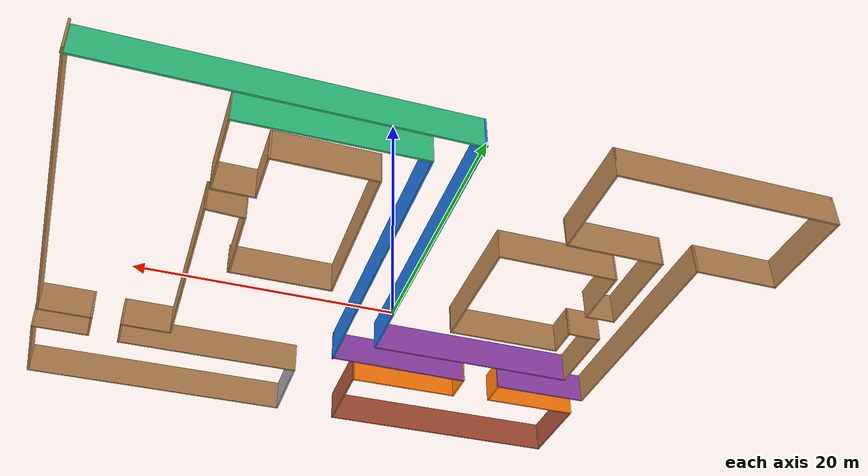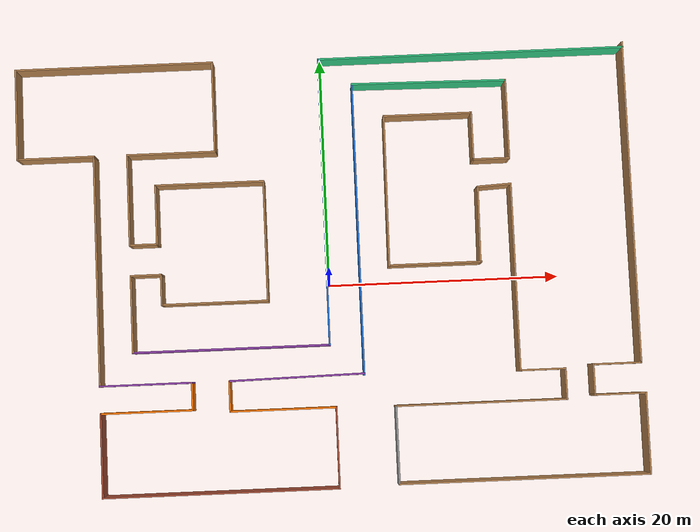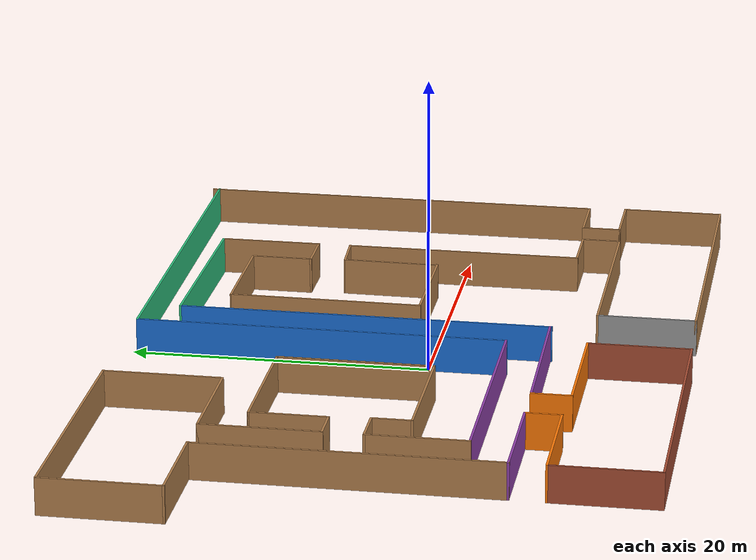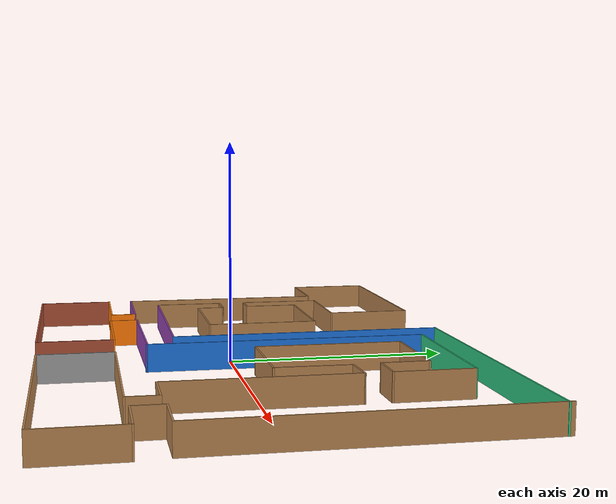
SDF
<?xml version='1.0'?>
<sdf version='1.7'>
  <model name='goofy_office'>
    <pose>0.081943 1.33085 0 0 -0 0</pose>
    <link name='Wall_100'>
      <collision name='Wall_100_Collision'>
        <geometry>
          <box>
            <size>21.5 0.15 2.5</size>
          </box>
        </geometry>
        <pose>0 0 1.25 0 -0 0</pose>
      </collision>
      <visual name='Wall_100_Visual'>
        <pose>0 0 1.25 0 -0 0</pose>
        <geometry>
          <box>
            <size>21.5 0.15 2.5</size>
          </box>
        </geometry>
        <material>
          <script>
            <uri>file://media/materials/scripts/gazebo.material</uri>
            <name>Gazebo/Wood</name>
          </script>
          <ambient>1 1 1 1</ambient>
        </material>
        <meta>
          <layer>0</layer>
        </meta>
      </visual>
      <pose>15.9 -18.5796 0 0 -0 0</pose>
    </link>
    <link name='Wall_101'>
      <collision name='Wall_101_Collision'>
        <geometry>
          <box>
            <size>7 0.15 2.5</size>
          </box>
        </geometry>
        <pose>0 0 1.25 0 -0 0</pose>
      </collision>
      <visual name='Wall_101_Visual'>
        <pose>0 0 1.25 0 -0 0</pose>
        <geometry>
          <box>
            <size>7 0.15 2.5</size>
          </box>
        </geometry>
        <material>
          <script>
            <uri>file://media/materials/scripts/gazebo.material</uri>
            <name>Gazebo/Wood</name>
          </script>
          <ambient>1 1 1 1</ambient>
        </material>
        <meta>
          <layer>0</layer>
        </meta>
      </visual>
      <pose>26.575 -15.1546 0 0 -0 1.5708</pose>
    </link>
    <link name='Wall_102'>
      <collision name='Wall_102_Collision'>
        <geometry>
          <box>
            <size>4.5 0.15 2.5</size>
          </box>
        </geometry>
        <pose>0 0 1.25 0 -0 0</pose>
      </collision>
      <visual name='Wall_102_Visual'>
        <pose>0 0 1.25 0 -0 0</pose>
        <geometry>
          <box>
            <size>4.5 0.15 2.5</size>
          </box>
        </geometry>
        <material>
          <script>
            <uri>file://media/materials/scripts/gazebo.material</uri>
            <name>Gazebo/Wood</name>
          </script>
          <ambient>1 1 1 1</ambient>
        </material>
        <meta>
          <layer>0</layer>
        </meta>
      </visual>
      <pose>24.4 -11.7296 0 0 -0 3.14159</pose>
    </link>
    <link name='Wall_103'>
      <collision name='Wall_103_Collision'>
        <geometry>
          <box>
            <size>2.75 0.15 2.5</size>
          </box>
        </geometry>
        <pose>0 0 1.25 0 -0 0</pose>
      </collision>
      <visual name='Wall_103_Visual'>
        <pose>0 0 1.25 0 -0 0</pose>
        <geometry>
          <box>
            <size>2.75 0.15 2.5</size>
          </box>
        </geometry>
        <material>
          <script>
            <uri>file://media/materials/scripts/gazebo.material</uri>
            <name>Gazebo/Wood</name>
          </script>
          <ambient>1 1 1 1</ambient>
        </material>
        <meta>
          <layer>0</layer>
        </meta>
      </visual>
      <pose>22.225 -10.4296 0 0 -0 1.5708</pose>
    </link>
    <link name='Wall_104'>
      <collision name='Wall_104_Collision'>
        <geometry>
          <box>
            <size>4.25 0.15 2.5</size>
          </box>
        </geometry>
        <pose>0 0 1.25 0 -0 0</pose>
      </collision>
      <visual name='Wall_104_Visual'>
        <pose>0 0 1.25 0 -0 0</pose>
        <geometry>
          <box>
            <size>4.25 0.15 2.5</size>
          </box>
        </geometry>
        <material>
          <script>
            <uri>file://media/materials/scripts/gazebo.material</uri>
            <name>Gazebo/Wood</name>
          </script>
          <ambient>1 1 1 1</ambient>
        </material>
        <meta>
          <layer>0</layer>
        </meta>
      </visual>
      <pose>24.275 -9.12964 0 0 -0 0</pose>
    </link>
    <link name='Wall_105'>
      <collision name='Wall_105_Collision'>
        <geometry>
          <box>
            <size>28 0.15 2.5</size>
          </box>
        </geometry>
        <pose>0 0 1.25 0 -0 0</pose>
      </collision>
      <visual name='Wall_105_Visual'>
        <pose>0 0 1.25 0 -0 0</pose>
        <geometry>
          <box>
            <size>28 0.15 2.5</size>
          </box>
        </geometry>
        <material>
          <script>
            <uri>file://media/materials/scripts/gazebo.material</uri>
            <name>Gazebo/Wood</name>
          </script>
          <ambient>1 1 1 1</ambient>
        </material>
        <meta>
          <layer>0</layer>
        </meta>
      </visual>
      <pose>26.325 4.79536 0 0 -0 1.5708</pose>
    </link>
    <link name='Wall_107'>
      <collision name='Wall_107_Collision'>
        <geometry>
          <box>
            <size>2.5 0.15 2.5</size>
          </box>
        </geometry>
        <pose>0 0 1.25 0 -0 0</pose>
      </collision>
      <visual name='Wall_107_Visual'>
        <pose>0 0 1.25 0 -0 0</pose>
        <geometry>
          <box>
            <size>2.5 0.15 2.5</size>
          </box>
        </geometry>
        <material>
          <script>
            <uri>file://media/materials/scripts/gazebo.material</uri>
            <name>Gazebo/Grey</name>
          </script>
          <ambient>0.996078 0.47451 0.0196078 1</ambient>
        </material>
        <meta>
          <layer>0</layer>
        </meta>
      </visual>
      <pose>-12.125 -10.4454 0 0 -0 1.5708</pose>
    </link>
    <link name='Wall_108'>
      <collision name='Wall_108_Collision'>
        <geometry>
          <box>
            <size>8 0.15 2.5</size>
          </box>
        </geometry>
        <pose>0 0 1.25 0 -0 0</pose>
      </collision>
      <visual name='Wall_108_Visual'>
        <pose>0 0 1.25 0 -0 0</pose>
        <geometry>
          <box>
            <size>8 0.15 2.5</size>
          </box>
        </geometry>
        <material>
          <script>
            <uri>file://media/materials/scripts/gazebo.material</uri>
            <name>Gazebo/Grey</name>
          </script>
          <ambient>0.568627 0.254902 0.67451 1</ambient>
        </material>
        <meta>
          <layer>0</layer>
        </meta>
      </visual>
      <pose>-16.05 -9.27036 0 0 -0 3.14159</pose>
    </link>
    <link name='Wall_109'>
      <collision name='Wall_109_Collision'>
        <geometry>
          <box>
            <size>20 0.15 2.5</size>
          </box>
        </geometry>
        <pose>0 0 1.25 0 -0 0</pose>
      </collision>
      <visual name='Wall_109_Visual'>
        <pose>0 0 1.25 0 -0 0</pose>
        <geometry>
          <box>
            <size>20 0.15 2.5</size>
          </box>
        </geometry>
        <material>
          <script>
            <uri>file://media/materials/scripts/gazebo.material</uri>
            <name>Gazebo/Wood</name>
          </script>
          <ambient>1 1 1 1</ambient>
        </material>
        <meta>
          <layer>0</layer>
        </meta>
      </visual>
      <pose>-19.975 0.654642 0 0 -0 1.5708</pose>
    </link>
    <link name='Wall_110'>
      <collision name='Wall_110_Collision'>
        <geometry>
          <box>
            <size>6.75 0.15 2.5</size>
          </box>
        </geometry>
        <pose>0 0 1.25 0 -0 0</pose>
      </collision>
      <visual name='Wall_110_Visual'>
        <pose>0 0 1.25 0 -0 0</pose>
        <geometry>
          <box>
            <size>6.75 0.15 2.5</size>
          </box>
        </geometry>
        <material>
          <script>
            <uri>file://media/materials/scripts/gazebo.material</uri>
            <name>Gazebo/Wood</name>
          </script>
          <ambient>1 1 1 1</ambient>
        </material>
        <meta>
          <layer>0</layer>
        </meta>
      </visual>
      <pose>-23.275 10.5796 0 0 -0 3.14159</pose>
    </link>
    <link name='Wall_111'>
      <collision name='Wall_111_Collision'>
        <geometry>
          <box>
            <size>8 0.15 2.5</size>
          </box>
        </geometry>
        <pose>0 0 1.25 0 -0 0</pose>
      </collision>
      <visual name='Wall_111_Visual'>
        <pose>0 0 1.25 0 -0 0</pose>
        <geometry>
          <box>
            <size>8 0.15 2.5</size>
          </box>
        </geometry>
        <material>
          <script>
            <uri>file://media/materials/scripts/gazebo.material</uri>
            <name>Gazebo/Wood</name>
          </script>
          <ambient>1 1 1 1</ambient>
        </material>
        <meta>
          <layer>0</layer>
        </meta>
      </visual>
      <pose>-26.575 14.5046 0 0 -0 1.5708</pose>
    </link>
    <link name='Wall_112'>
      <collision name='Wall_112_Collision'>
        <geometry>
          <box>
            <size>17.25 0.15 2.5</size>
          </box>
        </geometry>
        <pose>0 0 1.25 0 -0 0</pose>
      </collision>
      <visual name='Wall_112_Visual'>
        <pose>0 0 1.25 0 -0 0</pose>
        <geometry>
          <box>
            <size>17.25 0.15 2.5</size>
          </box>
        </geometry>
        <material>
          <script>
            <uri>file://media/materials/scripts/gazebo.material</uri>
            <name>Gazebo/Wood</name>
          </script>
          <ambient>1 1 1 1</ambient>
        </material>
        <meta>
          <layer>0</layer>
        </meta>
      </visual>
      <pose>-18.025 18.4296 0 0 -0 0</pose>
    </link>
    <link name='Wall_113'>
      <collision name='Wall_113_Collision'>
        <geometry>
          <box>
            <size>8 0.15 2.5</size>
          </box>
        </geometry>
        <pose>0 0 1.25 0 -0 0</pose>
      </collision>
      <visual name='Wall_113_Visual'>
        <pose>0 0 1.25 0 -0 0</pose>
        <geometry>
          <box>
            <size>8 0.15 2.5</size>
          </box>
        </geometry>
        <material>
          <script>
            <uri>file://media/materials/scripts/gazebo.material</uri>
            <name>Gazebo/Wood</name>
          </script>
          <ambient>1 1 1 1</ambient>
        </material>
        <meta>
          <layer>0</layer>
        </meta>
      </visual>
      <pose>-9.475 14.5046 0 0 -0 -1.5708</pose>
    </link>
    <link name='Wall_114'>
      <collision name='Wall_114_Collision'>
        <geometry>
          <box>
            <size>7.75 0.15 2.5</size>
          </box>
        </geometry>
        <pose>0 0 1.25 0 -0 0</pose>
      </collision>
      <visual name='Wall_114_Visual'>
        <pose>0 0 1.25 0 -0 0</pose>
        <geometry>
          <box>
            <size>7.75 0.15 2.5</size>
          </box>
        </geometry>
        <material>
          <script>
            <uri>file://media/materials/scripts/gazebo.material</uri>
            <name>Gazebo/Wood</name>
          </script>
          <ambient>1 1 1 1</ambient>
        </material>
        <meta>
          <layer>0</layer>
        </meta>
      </visual>
      <pose>-13.275 10.5796 0 0 -0 3.14159</pose>
    </link>
    <link name='Wall_115'>
      <collision name='Wall_115_Collision'>
        <geometry>
          <box>
            <size>8 0.15 2.5</size>
          </box>
        </geometry>
        <pose>0 0 1.25 0 -0 0</pose>
      </collision>
      <visual name='Wall_115_Visual'>
        <pose>0 0 1.25 0 -0 0</pose>
        <geometry>
          <box>
            <size>8 0.15 2.5</size>
          </box>
        </geometry>
        <material>
          <script>
            <uri>file://media/materials/scripts/gazebo.material</uri>
            <name>Gazebo/Wood</name>
          </script>
          <ambient>1 1 1 1</ambient>
        </material>
        <meta>
          <layer>0</layer>
        </meta>
      </visual>
      <pose>-17.075 6.65464 0 0 -0 -1.5708</pose>
    </link>
    <link name='Wall_116'>
      <collision name='Wall_116_Collision'>
        <geometry>
          <box>
            <size>2.5 0.15 2.5</size>
          </box>
        </geometry>
        <pose>0 0 1.25 0 -0 0</pose>
      </collision>
      <visual name='Wall_116_Visual'>
        <pose>0 0 1.25 0 -0 0</pose>
        <geometry>
          <box>
            <size>2.5 0.15 2.5</size>
          </box>
        </geometry>
        <material>
          <script>
            <uri>file://media/materials/scripts/gazebo.material</uri>
            <name>Gazebo/Wood</name>
          </script>
          <ambient>1 1 1 1</ambient>
        </material>
        <meta>
          <layer>0</layer>
        </meta>
      </visual>
      <pose>-15.9 2.72964 0 0 -0 0</pose>
    </link>
    <link name='Wall_117'>
      <collision name='Wall_117_Collision'>
        <geometry>
          <box>
            <size>5.25 0.15 2.5</size>
          </box>
        </geometry>
        <pose>0 0 1.25 0 -0 0</pose>
      </collision>
      <visual name='Wall_117_Visual'>
        <pose>0 0 1.25 0 -0 0</pose>
        <geometry>
          <box>
            <size>5.25 0.15 2.5</size>
          </box>
        </geometry>
        <material>
          <script>
            <uri>file://media/materials/scripts/gazebo.material</uri>
            <name>Gazebo/Wood</name>
          </script>
          <ambient>1 1 1 1</ambient>
        </material>
        <meta>
          <layer>0</layer>
        </meta>
      </visual>
      <pose>-14.725 5.27964 0 0 -0 1.5708</pose>
    </link>
    <link name='Wall_118'>
      <collision name='Wall_118_Collision'>
        <geometry>
          <box>
            <size>9.5 0.15 2.5</size>
          </box>
        </geometry>
        <pose>0 0 1.25 0 -0 0</pose>
      </collision>
      <visual name='Wall_118_Visual'>
        <pose>0 0 1.25 0 -0 0</pose>
        <geometry>
          <box>
            <size>9.5 0.15 2.5</size>
          </box>
        </geometry>
        <material>
          <script>
            <uri>file://media/materials/scripts/gazebo.material</uri>
            <name>Gazebo/Wood</name>
          </script>
          <ambient>1 1 1 1</ambient>
        </material>
        <meta>
          <layer>0</layer>
        </meta>
      </visual>
      <pose>-10.05 7.82964 0 0 -0 0</pose>
    </link>
    <link name='Wall_119'>
      <collision name='Wall_119_Collision'>
        <geometry>
          <box>
            <size>10.5 0.15 2.5</size>
          </box>
        </geometry>
        <pose>0 0 1.25 0 -0 0</pose>
      </collision>
      <visual name='Wall_119_Visual'>
        <pose>0 0 1.25 0 -0 0</pose>
        <geometry>
          <box>
            <size>10.5 0.15 2.5</size>
          </box>
        </geometry>
        <material>
          <script>
            <uri>file://media/materials/scripts/gazebo.material</uri>
            <name>Gazebo/Wood</name>
          </script>
          <ambient>1 1 1 1</ambient>
        </material>
        <meta>
          <layer>0</layer>
        </meta>
      </visual>
      <pose>-5.375 2.65464 0 0 -0 -1.5708</pose>
    </link>
    <link name='Wall_120'>
      <collision name='Wall_120_Collision'>
        <geometry>
          <box>
            <size>9.25 0.15 2.5</size>
          </box>
        </geometry>
        <pose>0 0 1.25 0 -0 0</pose>
      </collision>
      <visual name='Wall_120_Visual'>
        <pose>0 0 1.25 0 -0 0</pose>
        <geometry>
          <box>
            <size>9.25 0.15 2.5</size>
          </box>
        </geometry>
        <material>
          <script>
            <uri>file://media/materials/scripts/gazebo.material</uri>
            <name>Gazebo/Wood</name>
          </script>
          <ambient>1 1 1 1</ambient>
        </material>
        <meta>
          <layer>0</layer>
        </meta>
      </visual>
      <pose>-9.925 -2.52036 0 0 -0 3.14159</pose>
    </link>
    <link name='Wall_121'>
      <collision name='Wall_121_Collision'>
        <geometry>
          <box>
            <size>2.75 0.15 2.5</size>
          </box>
        </geometry>
        <pose>0 0 1.25 0 -0 0</pose>
      </collision>
      <visual name='Wall_121_Visual'>
        <pose>0 0 1.25 0 -0 0</pose>
        <geometry>
          <box>
            <size>2.75 0.15 2.5</size>
          </box>
        </geometry>
        <material>
          <script>
            <uri>file://media/materials/scripts/gazebo.material</uri>
            <name>Gazebo/Wood</name>
          </script>
          <ambient>1 1 1 1</ambient>
        </material>
        <meta>
          <layer>0</layer>
        </meta>
      </visual>
      <pose>-14.475 -1.22036 0 0 -0 1.5708</pose>
    </link>
    <link name='Wall_122'>
      <collision name='Wall_122_Collision'>
        <geometry>
          <box>
            <size>2.75 0.15 2.5</size>
          </box>
        </geometry>
        <pose>0 0 1.25 0 -0 0</pose>
      </collision>
      <visual name='Wall_122_Visual'>
        <pose>0 0 1.25 0 -0 0</pose>
        <geometry>
          <box>
            <size>2.75 0.15 2.5</size>
          </box>
        </geometry>
        <material>
          <script>
            <uri>file://media/materials/scripts/gazebo.material</uri>
            <name>Gazebo/Wood</name>
          </script>
          <ambient>1 1 1 1</ambient>
        </material>
        <meta>
          <layer>0</layer>
        </meta>
      </visual>
      <pose>-15.775 0.079642 0 0 -0 3.14159</pose>
    </link>
    <link name='Wall_123'>
      <collision name='Wall_123_Collision'>
        <geometry>
          <box>
            <size>6.75 0.15 2.5</size>
          </box>
        </geometry>
        <pose>0 0 1.25 0 -0 0</pose>
      </collision>
      <visual name='Wall_123_Visual'>
        <pose>0 0 1.25 0 -0 0</pose>
        <geometry>
          <box>
            <size>6.75 0.15 2.5</size>
          </box>
        </geometry>
        <material>
          <script>
            <uri>file://media/materials/scripts/gazebo.material</uri>
            <name>Gazebo/Wood</name>
          </script>
          <ambient>1 1 1 1</ambient>
        </material>
        <meta>
          <layer>0</layer>
        </meta>
      </visual>
      <pose>-17.075 -3.22036 0 0 -0 -1.5708</pose>
    </link>
    <link name='Wall_124'>
      <collision name='Wall_124_Collision'>
        <geometry>
          <box>
            <size>17 0.15 2.5</size>
          </box>
        </geometry>
        <pose>0 0 1.25 0 -0 0</pose>
      </collision>
      <visual name='Wall_124_Visual'>
        <pose>0 0 1.25 0 -0 0</pose>
        <geometry>
          <box>
            <size>17 0.15 2.5</size>
          </box>
        </geometry>
        <material>
          <script>
            <uri>file://media/materials/scripts/gazebo.material</uri>
            <name>Gazebo/Grey</name>
          </script>
          <ambient>0.568627 0.254902 0.67451 1</ambient>
        </material>
        <meta>
          <layer>0</layer>
        </meta>
      </visual>
      <pose>-8.65 -6.52036 0 0 -0 0</pose>
    </link>
    <link name='Wall_126'>
      <collision name='Wall_126_Collision'>
        <geometry>
          <box>
            <size>25 0.15 2.5</size>
          </box>
        </geometry>
        <pose>0 0 1.25 0 -0 0</pose>
      </collision>
      <visual name='Wall_126_Visual'>
        <pose>0 0 1.25 0 -0 0</pose>
        <geometry>
          <box>
            <size>25 0.15 2.5</size>
          </box>
        </geometry>
        <material>
          <script>
            <uri>file://media/materials/scripts/gazebo.material</uri>
            <name>Gazebo/Grey</name>
          </script>
          <ambient>0.109804 0.443137 0.847059 1</ambient>
        </material>
        <meta>
          <layer>0</layer>
        </meta>
      </visual>
      <pose>-0.225 5.90464 0 0 -0 1.5708</pose>
    </link>
    <link name='Wall_132'>
      <collision name='Wall_132_Collision'>
        <geometry>
          <box>
            <size>26.75 0.15 2.5</size>
          </box>
        </geometry>
        <pose>0 0 1.25 0 -0 0</pose>
      </collision>
      <visual name='Wall_132_Visual'>
        <pose>0 0 1.25 0 -0 0</pose>
        <geometry>
          <box>
            <size>26.75 0.15 2.5</size>
          </box>
        </geometry>
        <material>
          <script>
            <uri>file://media/materials/scripts/gazebo.material</uri>
            <name>Gazebo/Grey</name>
          </script>
          <ambient>0.180392 0.760784 0.494118 1</ambient>
        </material>
        <meta>
          <layer>0</layer>
        </meta>
      </visual>
      <pose>13.075 18.3296 0 0 -0 0</pose>
    </link>
    <link name='Wall_75'>
      <collision name='Wall_75_Collision'>
        <geometry>
          <box>
            <size>8 0.15 2.5</size>
          </box>
        </geometry>
        <pose>0 0 1.25 0 -0 0</pose>
      </collision>
      <visual name='Wall_75_Visual'>
        <pose>0 0 1.25 0 -0 0</pose>
        <geometry>
          <box>
            <size>8 0.15 2.5</size>
          </box>
        </geometry>
        <material>
          <script>
            <uri>file://media/materials/scripts/gazebo.material</uri>
            <name>Gazebo/Grey</name>
          </script>
          <ambient>0.996078 0.47451 0.0196078 1</ambient>
        </material>
        <meta>
          <layer>0</layer>
        </meta>
      </visual>
      <pose>-16.05 -11.6204 0 0 -0 0</pose>
    </link>
    <link name='Wall_77'>
      <collision name='Wall_77_Collision'>
        <geometry>
          <box>
            <size>7.25 0.15 2.5</size>
          </box>
        </geometry>
        <pose>0 0 1.25 0 -0 0</pose>
      </collision>
      <visual name='Wall_77_Visual'>
        <pose>0 0 1.25 0 -0 0</pose>
        <geometry>
          <box>
            <size>7.25 0.15 2.5</size>
          </box>
        </geometry>
        <material>
          <script>
            <uri>file://media/materials/scripts/gazebo.material</uri>
            <name>Gazebo/Bricks</name>
          </script>
          <ambient>1 1 1 1</ambient>
        </material>
        <meta>
          <layer>0</layer>
        </meta>
      </visual>
      <pose>-19.975 -15.1704 0 0 -0 -1.5708</pose>
    </link>
    <link name='Wall_78'>
      <collision name='Wall_78_Collision'>
        <geometry>
          <box>
            <size>20.25 0.15 2.5</size>
          </box>
        </geometry>
        <pose>0 0 1.25 0 -0 0</pose>
      </collision>
      <visual name='Wall_78_Visual'>
        <pose>0 0 1.25 0 -0 0</pose>
        <geometry>
          <box>
            <size>20.25 0.15 2.5</size>
          </box>
        </geometry>
        <material>
          <script>
            <uri>file://media/materials/scripts/gazebo.material</uri>
            <name>Gazebo/Bricks</name>
          </script>
          <ambient>1 1 1 1</ambient>
        </material>
        <meta>
          <layer>0</layer>
        </meta>
      </visual>
      <pose>-9.925 -18.7204 0 0 -0 0</pose>
    </link>
    <link name='Wall_79'>
      <collision name='Wall_79_Collision'>
        <geometry>
          <box>
            <size>7 0.15 2.5</size>
          </box>
        </geometry>
        <pose>0 0 1.25 0 -0 0</pose>
      </collision>
      <visual name='Wall_79_Visual'>
        <pose>0 0 1.25 0 -0 0</pose>
        <geometry>
          <box>
            <size>7 0.15 2.5</size>
          </box>
        </geometry>
        <material>
          <script>
            <uri>file://media/materials/scripts/gazebo.material</uri>
            <name>Gazebo/Bricks</name>
          </script>
          <ambient>1 1 1 1</ambient>
        </material>
        <meta>
          <layer>0</layer>
        </meta>
      </visual>
      <pose>0.125 -15.2954 0 0 -0 1.5708</pose>
    </link>
    <link name='Wall_80'>
      <collision name='Wall_80_Collision'>
        <geometry>
          <box>
            <size>9.158 0.15 2.5</size>
          </box>
        </geometry>
        <pose>0 0 1.25 0 -0 0</pose>
      </collision>
      <visual name='Wall_80_Visual'>
        <pose>0 0 1.25 0 -0 0</pose>
        <geometry>
          <box>
            <size>9.158 0.15 2.5</size>
          </box>
        </geometry>
        <material>
          <script>
            <uri>file://media/materials/scripts/gazebo.material</uri>
            <name>Gazebo/Grey</name>
          </script>
          <ambient>0.996078 0.47451 0.0196078 1</ambient>
        </material>
        <meta>
          <layer>0</layer>
        </meta>
      </visual>
      <pose>-4.379 -11.8704 0 0 -0 3.14159</pose>
    </link>
    <link name='Wall_81'>
      <collision name='Wall_81_Collision'>
        <geometry>
          <box>
            <size>2.75 0.15 2.5</size>
          </box>
        </geometry>
        <pose>0 0 1.25 0 -0 0</pose>
      </collision>
      <visual name='Wall_81_Visual'>
        <pose>0 0 1.25 0 -0 0</pose>
        <geometry>
          <box>
            <size>2.75 0.15 2.5</size>
          </box>
        </geometry>
        <material>
          <script>
            <uri>file://media/materials/scripts/gazebo.material</uri>
            <name>Gazebo/Grey</name>
          </script>
          <ambient>0.996078 0.47451 0.0196078 1</ambient>
        </material>
        <meta>
          <layer>0</layer>
        </meta>
      </visual>
      <pose>-8.929 -10.5704 0 0 -0 1.5708</pose>
    </link>
    <link name='Wall_82'>
      <collision name='Wall_82_Collision'>
        <geometry>
          <box>
            <size>11.6595 0.15 2.5</size>
          </box>
        </geometry>
        <pose>0 0 1.25 0 -0 0</pose>
      </collision>
      <visual name='Wall_82_Visual'>
        <pose>0 0 1.25 0 -0 0</pose>
        <geometry>
          <box>
            <size>11.6595 0.15 2.5</size>
          </box>
        </geometry>
        <material>
          <script>
            <uri>file://media/materials/scripts/gazebo.material</uri>
            <name>Gazebo/Grey</name>
          </script>
          <ambient>0.568627 0.254902 0.67451 1</ambient>
        </material>
        <meta>
          <layer>0</layer>
        </meta>
      </visual>
      <pose>-3.129 -9.17784 0 0 -0 0.016078</pose>
    </link>
    <link name='Wall_83'>
      <collision name='Wall_83_Collision'>
        <geometry>
          <box>
            <size>25.25 0.15 2.5</size>
          </box>
        </geometry>
        <pose>0 0 1.25 0 -0 0</pose>
      </collision>
      <visual name='Wall_83_Visual'>
        <pose>0 0 1.25 0 -0 0</pose>
        <geometry>
          <box>
            <size>25.25 0.15 2.5</size>
          </box>
        </geometry>
        <material>
          <script>
            <uri>file://media/materials/scripts/gazebo.material</uri>
            <name>Gazebo/Grey</name>
          </script>
          <ambient>0.109804 0.443137 0.847059 1</ambient>
        </material>
        <meta>
          <layer>0</layer>
        </meta>
      </visual>
      <pose>2.625 3.37216 0 0 -0 1.5708</pose>
    </link>
    <link name='Wall_84'>
      <collision name='Wall_84_Collision'>
        <geometry>
          <box>
            <size>13.5013 0.15 2.5</size>
          </box>
        </geometry>
        <pose>0 0 1.25 0 -0 0</pose>
      </collision>
      <visual name='Wall_84_Visual'>
        <pose>0 0 1.25 0 -0 0</pose>
        <geometry>
          <box>
            <size>13.5013 0.15 2.5</size>
          </box>
        </geometry>
        <material>
          <script>
            <uri>file://media/materials/scripts/gazebo.material</uri>
            <name>Gazebo/Grey</name>
          </script>
          <ambient>0.180392 0.760784 0.494118 1</ambient>
        </material>
        <meta>
          <layer>0</layer>
        </meta>
      </visual>
      <pose>9.3 15.9222 0 0 -0 -0.01386</pose>
    </link>
    <link name='Wall_85'>
      <collision name='Wall_85_Collision'>
        <geometry>
          <box>
            <size>7 0.15 2.5</size>
          </box>
        </geometry>
        <pose>0 0 1.25 0 -0 0</pose>
      </collision>
      <visual name='Wall_85_Visual'>
        <pose>0 0 1.25 0 -0 0</pose>
        <geometry>
          <box>
            <size>7 0.15 2.5</size>
          </box>
        </geometry>
        <material>
          <script>
            <uri>file://media/materials/scripts/gazebo.material</uri>
            <name>Gazebo/Wood</name>
          </script>
          <ambient>1 1 1 1</ambient>
        </material>
        <meta>
          <layer>0</layer>
        </meta>
      </visual>
      <pose>15.975 12.4046 0 0 -0 -1.5708</pose>
    </link>
    <link name='Wall_86'>
      <collision name='Wall_86_Collision'>
        <geometry>
          <box>
            <size>3.25 0.15 2.5</size>
          </box>
        </geometry>
        <pose>0 0 1.25 0 -0 0</pose>
      </collision>
      <visual name='Wall_86_Visual'>
        <pose>0 0 1.25 0 -0 0</pose>
        <geometry>
          <box>
            <size>3.25 0.15 2.5</size>
          </box>
        </geometry>
        <material>
          <script>
            <uri>file://media/materials/scripts/gazebo.material</uri>
            <name>Gazebo/Wood</name>
          </script>
          <ambient>1 1 1 1</ambient>
        </material>
        <meta>
          <layer>0</layer>
        </meta>
      </visual>
      <pose>14.425 8.97964 0 0 -0 3.14159</pose>
    </link>
    <link name='Wall_87'>
      <collision name='Wall_87_Collision'>
        <geometry>
          <box>
            <size>4.25 0.15 2.5</size>
          </box>
        </geometry>
        <pose>0 0 1.25 0 -0 0</pose>
      </collision>
      <visual name='Wall_87_Visual'>
        <pose>0 0 1.25 0 -0 0</pose>
        <geometry>
          <box>
            <size>4.25 0.15 2.5</size>
          </box>
        </geometry>
        <material>
          <script>
            <uri>file://media/materials/scripts/gazebo.material</uri>
            <name>Gazebo/Wood</name>
          </script>
          <ambient>1 1 1 1</ambient>
        </material>
        <meta>
          <layer>0</layer>
        </meta>
      </visual>
      <pose>12.875 11.0296 0 0 -0 1.5708</pose>
    </link>
    <link name='Wall_88'>
      <collision name='Wall_88_Collision'>
        <geometry>
          <box>
            <size>7.75 0.15 2.5</size>
          </box>
        </geometry>
        <pose>0 0 1.25 0 -0 0</pose>
      </collision>
      <visual name='Wall_88_Visual'>
        <pose>0 0 1.25 0 -0 0</pose>
        <geometry>
          <box>
            <size>7.75 0.15 2.5</size>
          </box>
        </geometry>
        <material>
          <script>
            <uri>file://media/materials/scripts/gazebo.material</uri>
            <name>Gazebo/Wood</name>
          </script>
          <ambient>1 1 1 1</ambient>
        </material>
        <meta>
          <layer>0</layer>
        </meta>
      </visual>
      <pose>9.075 13.0796 0 0 -0 3.14159</pose>
    </link>
    <link name='Wall_89'>
      <collision name='Wall_89_Collision'>
        <geometry>
          <box>
            <size>13.1578 0.15 2.5</size>
          </box>
        </geometry>
        <pose>0 0 1.25 0 -0 0</pose>
      </collision>
      <visual name='Wall_89_Visual'>
        <pose>0 0 1.25 0 -0 0</pose>
        <geometry>
          <box>
            <size>13.1578 0.15 2.5</size>
          </box>
        </geometry>
        <material>
          <script>
            <uri>file://media/materials/scripts/gazebo.material</uri>
            <name>Gazebo/Wood</name>
          </script>
          <ambient>1 1 1 1</ambient>
        </material>
        <meta>
          <layer>0</layer>
        </meta>
      </visual>
      <pose>5.22874 6.5759 0 0 -0 -1.57791</pose>
    </link>
    <link name='Wall_90'>
      <collision name='Wall_90_Collision'>
        <geometry>
          <box>
            <size>8 0.15 2.5</size>
          </box>
        </geometry>
        <pose>0 0 1.25 0 -0 0</pose>
      </collision>
      <visual name='Wall_90_Visual'>
        <pose>0 0 1.25 0 -0 0</pose>
        <geometry>
          <box>
            <size>8 0.15 2.5</size>
          </box>
        </geometry>
        <material>
          <script>
            <uri>file://media/materials/scripts/gazebo.material</uri>
            <name>Gazebo/Wood</name>
          </script>
          <ambient>1 1 1 1</ambient>
        </material>
        <meta>
          <layer>0</layer>
        </meta>
      </visual>
      <pose>9.2 0.072164 0 0 -0 0</pose>
    </link>
    <link name='Wall_91'>
      <collision name='Wall_91_Collision'>
        <geometry>
          <box>
            <size>6.65813 0.15 2.5</size>
          </box>
        </geometry>
        <pose>0 0 1.25 0 -0 0</pose>
      </collision>
      <visual name='Wall_91_Visual'>
        <pose>0 0 1.25 0 -0 0</pose>
        <geometry>
          <box>
            <size>6.65813 0.15 2.5</size>
          </box>
        </geometry>
        <material>
          <script>
            <uri>file://media/materials/scripts/gazebo.material</uri>
            <name>Gazebo/Wood</name>
          </script>
          <ambient>1 1 1 1</ambient>
        </material>
        <meta>
          <layer>0</layer>
        </meta>
      </visual>
      <pose>13.0787 3.3259 0 0 -0 1.55658</pose>
    </link>
    <link name='Wall_92'>
      <collision name='Wall_92_Collision'>
        <geometry>
          <box>
            <size>3.00347 0.15 2.5</size>
          </box>
        </geometry>
        <pose>0 0 1.25 0 -0 0</pose>
      </collision>
      <visual name='Wall_92_Visual'>
        <pose>0 0 1.25 0 -0 0</pose>
        <geometry>
          <box>
            <size>3.00347 0.15 2.5</size>
          </box>
        </geometry>
        <material>
          <script>
            <uri>file://media/materials/scripts/gazebo.material</uri>
            <name>Gazebo/Wood</name>
          </script>
          <ambient>1 1 1 1</ambient>
        </material>
        <meta>
          <layer>0</layer>
        </meta>
      </visual>
      <pose>14.55 6.65 0 0 -0 0.049334</pose>
    </link>
    <link name='Wall_95'>
      <collision name='Wall_95_Collision'>
        <geometry>
          <box>
            <size>16.25 0.15 2.5</size>
          </box>
        </geometry>
        <pose>0 0 1.25 0 -0 0</pose>
      </collision>
      <visual name='Wall_95_Visual'>
        <pose>0 0 1.25 0 -0 0</pose>
        <geometry>
          <box>
            <size>16.25 0.15 2.5</size>
          </box>
        </geometry>
        <material>
          <script>
            <uri>file://media/materials/scripts/gazebo.material</uri>
            <name>Gazebo/Wood</name>
          </script>
          <ambient>1 1 1 1</ambient>
        </material>
        <meta>
          <layer>0</layer>
        </meta>
      </visual>
      <pose>15.975 -1.32964 0 0 -0 -1.5708</pose>
    </link>
    <link name='Wall_96'>
      <collision name='Wall_96_Collision'>
        <geometry>
          <box>
            <size>4 0.15 2.5</size>
          </box>
        </geometry>
        <pose>0 0 1.25 0 -0 0</pose>
      </collision>
      <visual name='Wall_96_Visual'>
        <pose>0 0 1.25 0 -0 0</pose>
        <geometry>
          <box>
            <size>4 0.15 2.5</size>
          </box>
        </geometry>
        <material>
          <script>
            <uri>file://media/materials/scripts/gazebo.material</uri>
            <name>Gazebo/Wood</name>
          </script>
          <ambient>1 1 1 1</ambient>
        </material>
        <meta>
          <layer>0</layer>
        </meta>
      </visual>
      <pose>17.9 -9.37964 0 0 -0 0</pose>
    </link>
    <link name='Wall_97'>
      <collision name='Wall_97_Collision'>
        <geometry>
          <box>
            <size>2.75 0.15 2.5</size>
          </box>
        </geometry>
        <pose>0 0 1.25 0 -0 0</pose>
      </collision>
      <visual name='Wall_97_Visual'>
        <pose>0 0 1.25 0 -0 0</pose>
        <geometry>
          <box>
            <size>2.75 0.15 2.5</size>
          </box>
        </geometry>
        <material>
          <script>
            <uri>file://media/materials/scripts/gazebo.material</uri>
            <name>Gazebo/Wood</name>
          </script>
          <ambient>1 1 1 1</ambient>
        </material>
        <meta>
          <layer>0</layer>
        </meta>
      </visual>
      <pose>19.825 -10.6796 0 0 -0 -1.5708</pose>
    </link>
    <link name='Wall_98'>
      <collision name='Wall_98_Collision'>
        <geometry>
          <box>
            <size>14.75 0.15 2.5</size>
          </box>
        </geometry>
        <pose>0 0 1.25 0 -0 0</pose>
      </collision>
      <visual name='Wall_98_Visual'>
        <pose>0 0 1.25 0 -0 0</pose>
        <geometry>
          <box>
            <size>14.75 0.15 2.5</size>
          </box>
        </geometry>
        <material>
          <script>
            <uri>file://media/materials/scripts/gazebo.material</uri>
            <name>Gazebo/Wood</name>
          </script>
          <ambient>1 1 1 1</ambient>
        </material>
        <meta>
          <layer>0</layer>
        </meta>
      </visual>
      <pose>12.525 -11.9796 0 0 -0 3.14159</pose>
    </link>
    <link name='Wall_99'>
      <collision name='Wall_99_Collision'>
        <geometry>
          <box>
            <size>6.75 0.15 2.5</size>
          </box>
        </geometry>
        <pose>0 0 1.25 0 -0 0</pose>
      </collision>
      <visual name='Wall_99_Visual'>
        <pose>0 0 1.25 0 -0 0</pose>
        <geometry>
          <box>
            <size>6.75 0.15 2.5</size>
          </box>
        </geometry>
        <material>
          <script>
            <uri>file://media/materials/scripts/gazebo.material</uri>
            <name>Gazebo/Grey</name>
          </script>
          <ambient>1 1 1 1</ambient>
        </material>
        <meta>
          <layer>0</layer>
        </meta>
      </visual>
      <pose>5.225 -15.2796 0 0 -0 -1.5708</pose>
    </link>
    <static>1</static>
  </model>
</sdf>
